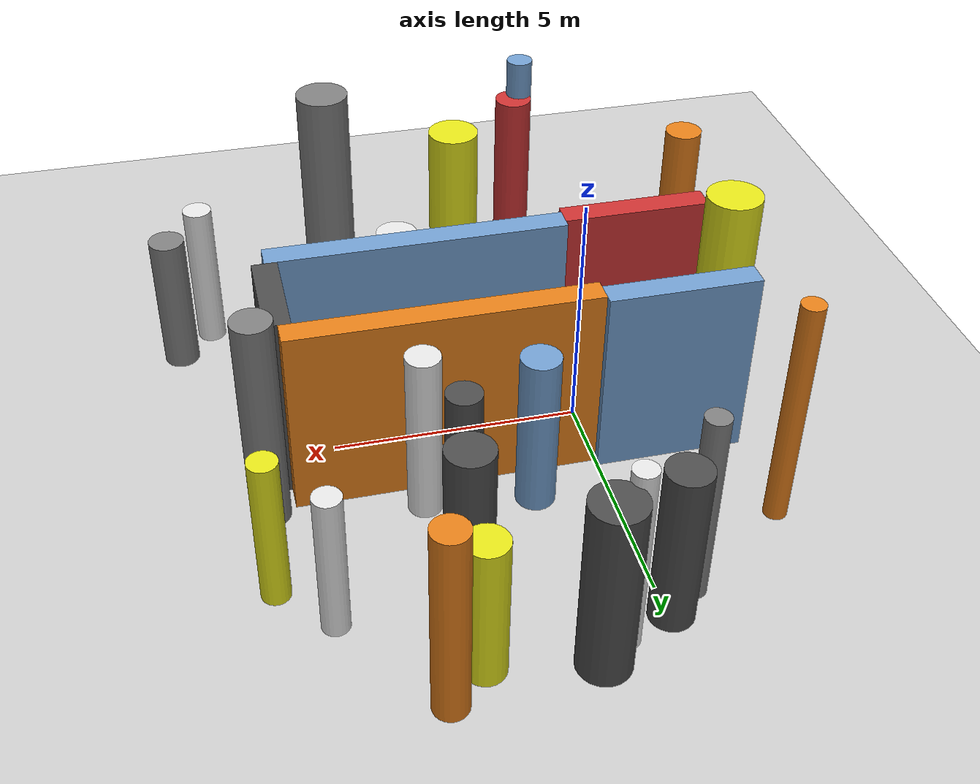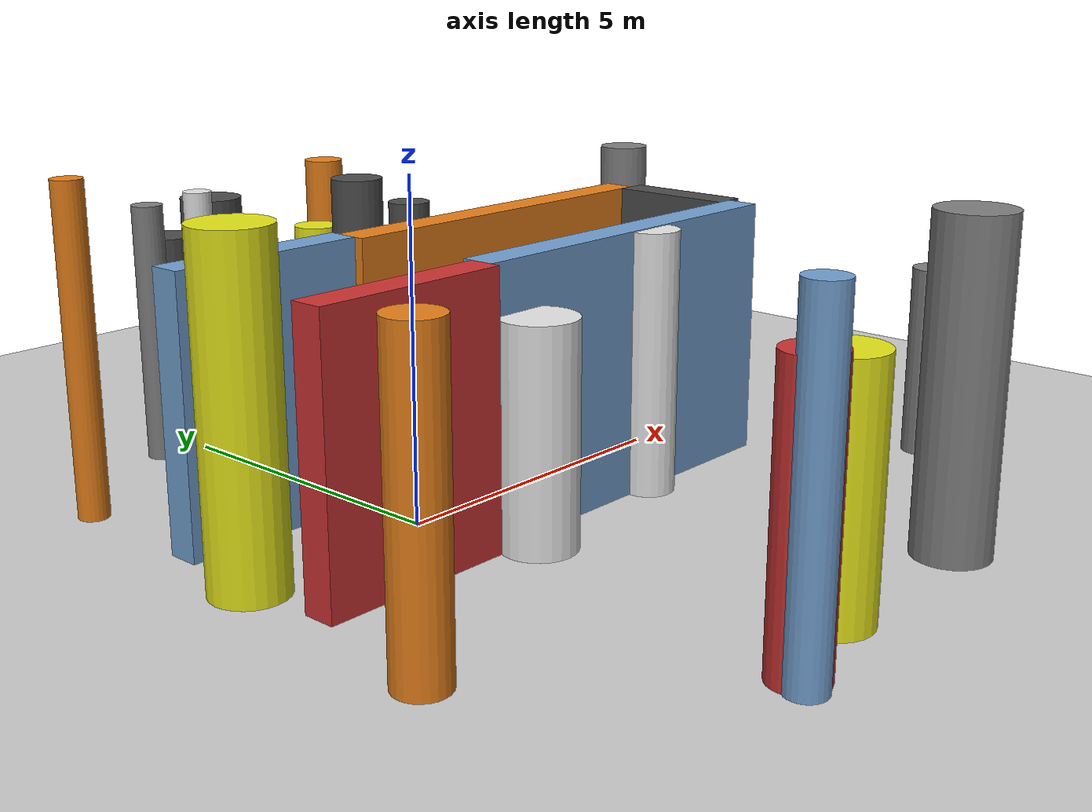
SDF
<?xml version='1.0'?>
<sdf version='1.6'>
  <world name='routeA_rl_v1__dense_recovery__rl_train__cul_de_sac_trap__000085'>
    <!-- Sun light -->
    <light name='sun' type='directional'>
      <cast_shadows>1</cast_shadows>
      <pose>0 0 10 0 0 0</pose>
      <diffuse>0.8 0.8 0.8 1</diffuse>
      <specular>0.2 0.2 0.2 1</specular>
      <attenuation>
        <range>1000</range>
        <constant>0.9</constant>
        <linear>0.01</linear>
        <quadratic>0.001</quadratic>
      </attenuation>
      <direction>-0.5 0.1 -0.9</direction>
    </light>

    <!-- Ground plane -->
    <model name='ground_plane'>
      <static>1</static>
      <link name='link'>
        <collision name='collision'>
          <geometry>
            <plane>
              <normal>0 0 1</normal>
              <size>100 100</size>
            </plane>
          </geometry>
          <surface>
            <contact>
              <collide_bitmask>65535</collide_bitmask>
              <ode/>
            </contact>
            <friction>
              <ode>
                <mu>100</mu>
                <mu2>50</mu2>
              </ode>
              <torsional><ode/></torsional>
            </friction>
            <bounce/>
          </surface>
          <max_contacts>10</max_contacts>
        </collision>
        <visual name='visual'>
          <cast_shadows>0</cast_shadows>
          <geometry>
            <plane>
              <normal>0 0 1</normal>
              <size>100 100</size>
            </plane>
          </geometry>
          <material>
            <script>
              <uri>file://media/materials/scripts/gazebo.material</uri>
              <n>Gazebo/Grey</n>
            </script>
          </material>
        </visual>
      </link>
    </model>

    <!-- Environment -->
    <magnetic_field>6e-06 2.3e-05 -4.2e-05</magnetic_field>
    <atmosphere type='adiabatic'/>
    <physics name='default_physics' default='0' type='ode'>
      <gravity>0 0 -9.8</gravity>
      <max_step_size>0.004</max_step_size>
      <real_time_factor>1</real_time_factor>
      <real_time_update_rate>250</real_time_update_rate>
    </physics>
    <scene>
      <ambient>0.4 0.4 0.4 1</ambient>
      <background>0.7 0.7 0.7 1</background>
      <shadows>1</shadows>
    </scene>
    <wind/>
    <spherical_coordinates>
      <surface_model>EARTH_WGS84</surface_model>
      <latitude_deg>0</latitude_deg>
      <longitude_deg>0</longitude_deg>
      <elevation>0</elevation>
      <heading_deg>0</heading_deg>
    </spherical_coordinates>

    <!-- ============ OBSTACLES (29) ============ -->
    <model name='trap_side_l'>
      <static>1</static>
      <link name='link'>
        <visual name='visual'>
          <geometry>
            <box>
              <size>6.0000 0.5000 4.0000</size>
            </box>
          </geometry>
          <material>
            <script>
              <n>Gazebo/Blue</n>
              <uri>file://media/materials/scripts/gazebo.material</uri>
            </script>
            <ambient>0.447 0.624 0.812 1</ambient>
          </material>
        </visual>
        <collision name='collision'>
          <geometry>
            <box>
              <size>6.0000 0.5000 4.0000</size>
            </box>
          </geometry>
          <max_contacts>10</max_contacts>
          <surface>
            <contact><ode/></contact>
            <bounce/>
            <friction>
              <ode><mu>1</mu><mu2>1</mu2></ode>
              <torsional><ode/></torsional>
            </friction>
          </surface>
        </collision>
      </link>
      <pose>3.0000 -1.2500 2.0000 0 0 0.0000</pose>
    </model>

    <model name='trap_side_r'>
      <static>1</static>
      <link name='link'>
        <visual name='visual'>
          <geometry>
            <box>
              <size>6.0000 0.5000 4.0000</size>
            </box>
          </geometry>
          <material>
            <script>
              <n>Gazebo/Orange</n>
              <uri>file://media/materials/scripts/gazebo.material</uri>
            </script>
            <ambient>0.9 0.5 0.1 1</ambient>
          </material>
        </visual>
        <collision name='collision'>
          <geometry>
            <box>
              <size>6.0000 0.5000 4.0000</size>
            </box>
          </geometry>
          <max_contacts>10</max_contacts>
          <surface>
            <contact><ode/></contact>
            <bounce/>
            <friction>
              <ode><mu>1</mu><mu2>1</mu2></ode>
              <torsional><ode/></torsional>
            </friction>
          </surface>
        </collision>
      </link>
      <pose>3.0000 1.2500 2.0000 0 0 0.0000</pose>
    </model>

    <model name='trap_back'>
      <static>1</static>
      <link name='link'>
        <visual name='visual'>
          <geometry>
            <box>
              <size>0.5000 2.0000 4.0000</size>
            </box>
          </geometry>
          <material>
            <script>
              <n>Gazebo/DarkGrey</n>
              <uri>file://media/materials/scripts/gazebo.material</uri>
            </script>
            <ambient>0.3 0.3 0.3 1</ambient>
          </material>
        </visual>
        <collision name='collision'>
          <geometry>
            <box>
              <size>0.5000 2.0000 4.0000</size>
            </box>
          </geometry>
          <max_contacts>10</max_contacts>
          <surface>
            <contact><ode/></contact>
            <bounce/>
            <friction>
              <ode><mu>1</mu><mu2>1</mu2></ode>
              <torsional><ode/></torsional>
            </friction>
          </surface>
        </collision>
      </link>
      <pose>6.0000 0.0000 2.0000 0 0 0.0000</pose>
    </model>

    <model name='trap_funnel_l'>
      <static>1</static>
      <link name='link'>
        <visual name='visual'>
          <geometry>
            <box>
              <size>3.0000 0.5000 4.0000</size>
            </box>
          </geometry>
          <material>
            <script>
              <n>Gazebo/Red</n>
              <uri>file://media/materials/scripts/gazebo.material</uri>
            </script>
            <ambient>0.8 0.2 0.2 1</ambient>
          </material>
        </visual>
        <collision name='collision'>
          <geometry>
            <box>
              <size>3.0000 0.5000 4.0000</size>
            </box>
          </geometry>
          <max_contacts>10</max_contacts>
          <surface>
            <contact><ode/></contact>
            <bounce/>
            <friction>
              <ode><mu>1</mu><mu2>1</mu2></ode>
              <torsional><ode/></torsional>
            </friction>
          </surface>
        </collision>
      </link>
      <pose>-1.5000 -1.4000 2.0000 0 0 0.0000</pose>
    </model>

    <model name='trap_funnel_r'>
      <static>1</static>
      <link name='link'>
        <visual name='visual'>
          <geometry>
            <box>
              <size>3.0000 0.5000 4.0000</size>
            </box>
          </geometry>
          <material>
            <script>
              <n>Gazebo/Blue</n>
              <uri>file://media/materials/scripts/gazebo.material</uri>
            </script>
            <ambient>0.447 0.624 0.812 1</ambient>
          </material>
        </visual>
        <collision name='collision'>
          <geometry>
            <box>
              <size>3.0000 0.5000 4.0000</size>
            </box>
          </geometry>
          <max_contacts>10</max_contacts>
          <surface>
            <contact><ode/></contact>
            <bounce/>
            <friction>
              <ode><mu>1</mu><mu2>1</mu2></ode>
              <torsional><ode/></torsional>
            </friction>
          </surface>
        </collision>
      </link>
      <pose>-1.5000 1.4000 2.0000 0 0 0.0000</pose>
    </model>

    <model name='trap_scatter_0'>
      <static>1</static>
      <link name='link'>
        <visual name='visual'>
          <geometry>
            <cylinder>
              <radius>0.2808</radius>
              <length>3.1948</length>
            </cylinder>
          </geometry>
          <material>
            <script>
              <n>Gazebo/Yellow</n>
              <uri>file://media/materials/scripts/gazebo.material</uri>
            </script>
            <ambient>0.9 0.9 0.1 1</ambient>
          </material>
        </visual>
        <collision name='collision'>
          <geometry>
            <cylinder>
              <radius>0.2808</radius>
              <length>3.1948</length>
            </cylinder>
          </geometry>
          <max_contacts>10</max_contacts>
          <surface>
            <contact><ode/></contact>
            <bounce/>
            <friction>
              <ode><mu>1</mu><mu2>1</mu2></ode>
              <torsional><ode/></torsional>
            </friction>
          </surface>
        </collision>
      </link>
      <pose>6.6518 3.6230 1.5974 0 0 0.0000</pose>
    </model>

    <model name='trap_scatter_1'>
      <static>1</static>
      <link name='link'>
        <visual name='visual'>
          <geometry>
            <cylinder>
              <radius>0.2339</radius>
              <length>3.9971</length>
            </cylinder>
          </geometry>
          <material>
            <script>
              <n>Gazebo/White</n>
              <uri>file://media/materials/scripts/gazebo.material</uri>
            </script>
            <ambient>0.9 0.9 0.9 1</ambient>
          </material>
        </visual>
        <collision name='collision'>
          <geometry>
            <cylinder>
              <radius>0.2339</radius>
              <length>3.9971</length>
            </cylinder>
          </geometry>
          <max_contacts>10</max_contacts>
          <surface>
            <contact><ode/></contact>
            <bounce/>
            <friction>
              <ode><mu>1</mu><mu2>1</mu2></ode>
              <torsional><ode/></torsional>
            </friction>
          </surface>
        </collision>
      </link>
      <pose>0.8514 6.0425 1.9986 0 0 0.0000</pose>
    </model>

    <model name='trap_scatter_2'>
      <static>1</static>
      <link name='link'>
        <visual name='visual'>
          <geometry>
            <cylinder>
              <radius>0.4300</radius>
              <length>3.4481</length>
            </cylinder>
          </geometry>
          <material>
            <script>
              <n>Gazebo/DarkGrey</n>
              <uri>file://media/materials/scripts/gazebo.material</uri>
            </script>
            <ambient>0.3 0.3 0.3 1</ambient>
          </material>
        </visual>
        <collision name='collision'>
          <geometry>
            <cylinder>
              <radius>0.4300</radius>
              <length>3.4481</length>
            </cylinder>
          </geometry>
          <max_contacts>10</max_contacts>
          <surface>
            <contact><ode/></contact>
            <bounce/>
            <friction>
              <ode><mu>1</mu><mu2>1</mu2></ode>
              <torsional><ode/></torsional>
            </friction>
          </surface>
        </collision>
      </link>
      <pose>-0.0855 5.6615 1.7240 0 0 0.0000</pose>
    </model>

    <model name='trap_scatter_3'>
      <static>1</static>
      <link name='link'>
        <visual name='visual'>
          <geometry>
            <cylinder>
              <radius>0.5588</radius>
              <length>4.7987</length>
            </cylinder>
          </geometry>
          <material>
            <script>
              <n>Gazebo/Yellow</n>
              <uri>file://media/materials/scripts/gazebo.material</uri>
            </script>
            <ambient>0.9 0.9 0.1 1</ambient>
          </material>
        </visual>
        <collision name='collision'>
          <geometry>
            <cylinder>
              <radius>0.5588</radius>
              <length>4.7987</length>
            </cylinder>
          </geometry>
          <max_contacts>10</max_contacts>
          <surface>
            <contact><ode/></contact>
            <bounce/>
            <friction>
              <ode><mu>1</mu><mu2>1</mu2></ode>
              <torsional><ode/></torsional>
            </friction>
          </surface>
        </collision>
      </link>
      <pose>-3.0422 -0.1135 2.3994 0 0 0.0000</pose>
    </model>

    <model name='trap_scatter_4'>
      <static>1</static>
      <link name='link'>
        <visual name='visual'>
          <geometry>
            <cylinder>
              <radius>0.2849</radius>
              <length>4.7404</length>
            </cylinder>
          </geometry>
          <material>
            <script>
              <n>Gazebo/Blue</n>
              <uri>file://media/materials/scripts/gazebo.material</uri>
            </script>
            <ambient>0.447 0.624 0.812 1</ambient>
          </material>
        </visual>
        <collision name='collision'>
          <geometry>
            <cylinder>
              <radius>0.2849</radius>
              <length>4.7404</length>
            </cylinder>
          </geometry>
          <max_contacts>10</max_contacts>
          <surface>
            <contact><ode/></contact>
            <bounce/>
            <friction>
              <ode><mu>1</mu><mu2>1</mu2></ode>
              <torsional><ode/></torsional>
            </friction>
          </surface>
        </collision>
      </link>
      <pose>-0.5581 -6.8176 2.3702 0 0 0.0000</pose>
    </model>

    <model name='trap_scatter_5'>
      <static>1</static>
      <link name='link'>
        <visual name='visual'>
          <geometry>
            <cylinder>
              <radius>0.2684</radius>
              <length>3.0898</length>
            </cylinder>
          </geometry>
          <material>
            <script>
              <n>Gazebo/White</n>
              <uri>file://media/materials/scripts/gazebo.material</uri>
            </script>
            <ambient>0.9 0.9 0.9 1</ambient>
          </material>
        </visual>
        <collision name='collision'>
          <geometry>
            <cylinder>
              <radius>0.2684</radius>
              <length>3.0898</length>
            </cylinder>
          </geometry>
          <max_contacts>10</max_contacts>
          <surface>
            <contact><ode/></contact>
            <bounce/>
            <friction>
              <ode><mu>1</mu><mu2>1</mu2></ode>
              <torsional><ode/></torsional>
            </friction>
          </surface>
        </collision>
      </link>
      <pose>5.7222 4.5843 1.5449 0 0 0.0000</pose>
    </model>

    <model name='trap_scatter_6'>
      <static>1</static>
      <link name='link'>
        <visual name='visual'>
          <geometry>
            <cylinder>
              <radius>0.3400</radius>
              <length>3.6444</length>
            </cylinder>
          </geometry>
          <material>
            <script>
              <n>Gazebo/White</n>
              <uri>file://media/materials/scripts/gazebo.material</uri>
            </script>
            <ambient>0.9 0.9 0.9 1</ambient>
          </material>
        </visual>
        <collision name='collision'>
          <geometry>
            <cylinder>
              <radius>0.3400</radius>
              <length>3.6444</length>
            </cylinder>
          </geometry>
          <max_contacts>10</max_contacts>
          <surface>
            <contact><ode/></contact>
            <bounce/>
            <friction>
              <ode><mu>1</mu><mu2>1</mu2></ode>
              <torsional><ode/></torsional>
            </friction>
          </surface>
        </collision>
      </link>
      <pose>3.5707 2.0055 1.8222 0 0 0.0000</pose>
    </model>

    <model name='trap_scatter_7'>
      <static>1</static>
      <link name='link'>
        <visual name='visual'>
          <geometry>
            <cylinder>
              <radius>0.3921</radius>
              <length>3.0679</length>
            </cylinder>
          </geometry>
          <material>
            <script>
              <n>Gazebo/Yellow</n>
              <uri>file://media/materials/scripts/gazebo.material</uri>
            </script>
            <ambient>0.9 0.9 0.1 1</ambient>
          </material>
        </visual>
        <collision name='collision'>
          <geometry>
            <cylinder>
              <radius>0.3921</radius>
              <length>3.0679</length>
            </cylinder>
          </geometry>
          <max_contacts>10</max_contacts>
          <surface>
            <contact><ode/></contact>
            <bounce/>
            <friction>
              <ode><mu>1</mu><mu2>1</mu2></ode>
              <torsional><ode/></torsional>
            </friction>
          </surface>
        </collision>
      </link>
      <pose>3.4086 6.1086 1.5339 0 0 0.0000</pose>
    </model>

    <model name='trap_scatter_8'>
      <static>1</static>
      <link name='link'>
        <visual name='visual'>
          <geometry>
            <cylinder>
              <radius>0.4443</radius>
              <length>4.0283</length>
            </cylinder>
          </geometry>
          <material>
            <script>
              <n>Gazebo/DarkGrey</n>
              <uri>file://media/materials/scripts/gazebo.material</uri>
            </script>
            <ambient>0.3 0.3 0.3 1</ambient>
          </material>
        </visual>
        <collision name='collision'>
          <geometry>
            <cylinder>
              <radius>0.4443</radius>
              <length>4.0283</length>
            </cylinder>
          </geometry>
          <max_contacts>10</max_contacts>
          <surface>
            <contact><ode/></contact>
            <bounce/>
            <friction>
              <ode><mu>1</mu><mu2>1</mu2></ode>
              <torsional><ode/></torsional>
            </friction>
          </surface>
        </collision>
      </link>
      <pose>3.4329 5.0134 2.0142 0 0 0.0000</pose>
    </model>

    <model name='trap_scatter_9'>
      <static>1</static>
      <link name='link'>
        <visual name='visual'>
          <geometry>
            <cylinder>
              <radius>0.3652</radius>
              <length>3.0193</length>
            </cylinder>
          </geometry>
          <material>
            <script>
              <n>Gazebo/Grey</n>
              <uri>file://media/materials/scripts/gazebo.material</uri>
            </script>
            <ambient>0.5 0.5 0.5 1</ambient>
          </material>
        </visual>
        <collision name='collision'>
          <geometry>
            <cylinder>
              <radius>0.3652</radius>
              <length>3.0193</length>
            </cylinder>
          </geometry>
          <max_contacts>10</max_contacts>
          <surface>
            <contact><ode/></contact>
            <bounce/>
            <friction>
              <ode><mu>1</mu><mu2>1</mu2></ode>
              <torsional><ode/></torsional>
            </friction>
          </surface>
        </collision>
      </link>
      <pose>7.7802 -3.7558 1.5096 0 0 0.0000</pose>
    </model>

    <model name='trap_scatter_10'>
      <static>1</static>
      <link name='link'>
        <visual name='visual'>
          <geometry>
            <cylinder>
              <radius>0.3381</radius>
              <length>3.8409</length>
            </cylinder>
          </geometry>
          <material>
            <script>
              <n>Gazebo/DarkGrey</n>
              <uri>file://media/materials/scripts/gazebo.material</uri>
            </script>
            <ambient>0.3 0.3 0.3 1</ambient>
          </material>
        </visual>
        <collision name='collision'>
          <geometry>
            <cylinder>
              <radius>0.3381</radius>
              <length>3.8409</length>
            </cylinder>
          </geometry>
          <max_contacts>10</max_contacts>
          <surface>
            <contact><ode/></contact>
            <bounce/>
            <friction>
              <ode><mu>1</mu><mu2>1</mu2></ode>
              <torsional><ode/></torsional>
            </friction>
          </surface>
        </collision>
      </link>
      <pose>3.1499 3.4025 1.9204 0 0 0.0000</pose>
    </model>

    <model name='trap_scatter_12'>
      <static>1</static>
      <link name='link'>
        <visual name='visual'>
          <geometry>
            <cylinder>
              <radius>0.4046</radius>
              <length>3.8931</length>
            </cylinder>
          </geometry>
          <material>
            <script>
              <n>Gazebo/Red</n>
              <uri>file://media/materials/scripts/gazebo.material</uri>
            </script>
            <ambient>0.8 0.2 0.2 1</ambient>
          </material>
        </visual>
        <collision name='collision'>
          <geometry>
            <cylinder>
              <radius>0.4046</radius>
              <length>3.8931</length>
            </cylinder>
          </geometry>
          <max_contacts>10</max_contacts>
          <surface>
            <contact><ode/></contact>
            <bounce/>
            <friction>
              <ode><mu>1</mu><mu2>1</mu2></ode>
              <torsional><ode/></torsional>
            </friction>
          </surface>
        </collision>
      </link>
      <pose>-0.3733 -6.5993 1.9466 0 0 0.0000</pose>
    </model>

    <model name='trap_scatter_13'>
      <static>1</static>
      <link name='link'>
        <visual name='visual'>
          <geometry>
            <cylinder>
              <radius>0.5589</radius>
              <length>3.5009</length>
            </cylinder>
          </geometry>
          <material>
            <script>
              <n>Gazebo/Yellow</n>
              <uri>file://media/materials/scripts/gazebo.material</uri>
            </script>
            <ambient>0.9 0.9 0.1 1</ambient>
          </material>
        </visual>
        <collision name='collision'>
          <geometry>
            <cylinder>
              <radius>0.5589</radius>
              <length>3.5009</length>
            </cylinder>
          </geometry>
          <max_contacts>10</max_contacts>
          <surface>
            <contact><ode/></contact>
            <bounce/>
            <friction>
              <ode><mu>1</mu><mu2>1</mu2></ode>
              <torsional><ode/></torsional>
            </friction>
          </surface>
        </collision>
      </link>
      <pose>1.1598 -6.0849 1.7504 0 0 0.0000</pose>
    </model>

    <model name='trap_scatter_14'>
      <static>1</static>
      <link name='link'>
        <visual name='visual'>
          <geometry>
            <cylinder>
              <radius>0.5140</radius>
              <length>3.7852</length>
            </cylinder>
          </geometry>
          <material>
            <script>
              <n>Gazebo/DarkGrey</n>
              <uri>file://media/materials/scripts/gazebo.material</uri>
            </script>
            <ambient>0.3 0.3 0.3 1</ambient>
          </material>
        </visual>
        <collision name='collision'>
          <geometry>
            <cylinder>
              <radius>0.5140</radius>
              <length>3.7852</length>
            </cylinder>
          </geometry>
          <max_contacts>10</max_contacts>
          <surface>
            <contact><ode/></contact>
            <bounce/>
            <friction>
              <ode><mu>1</mu><mu2>1</mu2></ode>
              <torsional><ode/></torsional>
            </friction>
          </surface>
        </collision>
      </link>
      <pose>1.4110 6.4499 1.8926 0 0 0.0000</pose>
    </model>

    <model name='trap_scatter_15'>
      <static>1</static>
      <link name='link'>
        <visual name='visual'>
          <geometry>
            <cylinder>
              <radius>0.2401</radius>
              <length>4.0721</length>
            </cylinder>
          </geometry>
          <material>
            <script>
              <n>Gazebo/Grey</n>
              <uri>file://media/materials/scripts/gazebo.material</uri>
            </script>
            <ambient>0.5 0.5 0.5 1</ambient>
          </material>
        </visual>
        <collision name='collision'>
          <geometry>
            <cylinder>
              <radius>0.2401</radius>
              <length>4.0721</length>
            </cylinder>
          </geometry>
          <max_contacts>10</max_contacts>
          <surface>
            <contact><ode/></contact>
            <bounce/>
            <friction>
              <ode><mu>1</mu><mu2>1</mu2></ode>
              <torsional><ode/></torsional>
            </friction>
          </surface>
        </collision>
      </link>
      <pose>-0.6796 5.1993 2.0360 0 0 0.0000</pose>
    </model>

    <model name='trap_scatter_16'>
      <static>1</static>
      <link name='link'>
        <visual name='visual'>
          <geometry>
            <cylinder>
              <radius>0.5645</radius>
              <length>4.7425</length>
            </cylinder>
          </geometry>
          <material>
            <script>
              <n>Gazebo/Grey</n>
              <uri>file://media/materials/scripts/gazebo.material</uri>
            </script>
            <ambient>0.5 0.5 0.5 1</ambient>
          </material>
        </visual>
        <collision name='collision'>
          <geometry>
            <cylinder>
              <radius>0.5645</radius>
              <length>4.7425</length>
            </cylinder>
          </geometry>
          <max_contacts>10</max_contacts>
          <surface>
            <contact><ode/></contact>
            <bounce/>
            <friction>
              <ode><mu>1</mu><mu2>1</mu2></ode>
              <torsional><ode/></torsional>
            </friction>
          </surface>
        </collision>
      </link>
      <pose>4.0788 -6.1559 2.3712 0 0 0.0000</pose>
    </model>

    <model name='trap_scatter_17'>
      <static>1</static>
      <link name='link'>
        <visual name='visual'>
          <geometry>
            <cylinder>
              <radius>0.3901</radius>
              <length>4.5874</length>
            </cylinder>
          </geometry>
          <material>
            <script>
              <n>Gazebo/Grey</n>
              <uri>file://media/materials/scripts/gazebo.material</uri>
            </script>
            <ambient>0.5 0.5 0.5 1</ambient>
          </material>
        </visual>
        <collision name='collision'>
          <geometry>
            <cylinder>
              <radius>0.3901</radius>
              <length>4.5874</length>
            </cylinder>
          </geometry>
          <max_contacts>10</max_contacts>
          <surface>
            <contact><ode/></contact>
            <bounce/>
            <friction>
              <ode><mu>1</mu><mu2>1</mu2></ode>
              <torsional><ode/></torsional>
            </friction>
          </surface>
        </collision>
      </link>
      <pose>6.4894 1.5669 2.2937 0 0 0.0000</pose>
    </model>

    <model name='trap_scatter_18'>
      <static>1</static>
      <link name='link'>
        <visual name='visual'>
          <geometry>
            <cylinder>
              <radius>0.4049</radius>
              <length>3.9858</length>
            </cylinder>
          </geometry>
          <material>
            <script>
              <n>Gazebo/White</n>
              <uri>file://media/materials/scripts/gazebo.material</uri>
            </script>
            <ambient>0.9 0.9 0.9 1</ambient>
          </material>
        </visual>
        <collision name='collision'>
          <geometry>
            <cylinder>
              <radius>0.4049</radius>
              <length>3.9858</length>
            </cylinder>
          </geometry>
          <max_contacts>10</max_contacts>
          <surface>
            <contact><ode/></contact>
            <bounce/>
            <friction>
              <ode><mu>1</mu><mu2>1</mu2></ode>
              <torsional><ode/></torsional>
            </friction>
          </surface>
        </collision>
      </link>
      <pose>3.3440 -1.5282 1.9929 0 0 0.0000</pose>
    </model>

    <model name='trap_scatter_19'>
      <static>1</static>
      <link name='link'>
        <visual name='visual'>
          <geometry>
            <cylinder>
              <radius>0.3916</radius>
              <length>3.4270</length>
            </cylinder>
          </geometry>
          <material>
            <script>
              <n>Gazebo/Blue</n>
              <uri>file://media/materials/scripts/gazebo.material</uri>
            </script>
            <ambient>0.447 0.624 0.812 1</ambient>
          </material>
        </visual>
        <collision name='collision'>
          <geometry>
            <cylinder>
              <radius>0.3916</radius>
              <length>3.4270</length>
            </cylinder>
          </geometry>
          <max_contacts>10</max_contacts>
          <surface>
            <contact><ode/></contact>
            <bounce/>
            <friction>
              <ode><mu>1</mu><mu2>1</mu2></ode>
              <torsional><ode/></torsional>
            </friction>
          </surface>
        </collision>
      </link>
      <pose>1.4483 2.2374 1.7135 0 0 0.0000</pose>
    </model>

    <model name='trap_scatter_20'>
      <static>1</static>
      <link name='link'>
        <visual name='visual'>
          <geometry>
            <cylinder>
              <radius>0.2978</radius>
              <length>3.2308</length>
            </cylinder>
          </geometry>
          <material>
            <script>
              <n>Gazebo/White</n>
              <uri>file://media/materials/scripts/gazebo.material</uri>
            </script>
            <ambient>0.9 0.9 0.9 1</ambient>
          </material>
        </visual>
        <collision name='collision'>
          <geometry>
            <cylinder>
              <radius>0.2978</radius>
              <length>3.2308</length>
            </cylinder>
          </geometry>
          <max_contacts>10</max_contacts>
          <surface>
            <contact><ode/></contact>
            <bounce/>
            <friction>
              <ode><mu>1</mu><mu2>1</mu2></ode>
              <torsional><ode/></torsional>
            </friction>
          </surface>
        </collision>
      </link>
      <pose>7.0720 -4.4786 1.6154 0 0 0.0000</pose>
    </model>

    <model name='trap_scatter_21'>
      <static>1</static>
      <link name='link'>
        <visual name='visual'>
          <geometry>
            <cylinder>
              <radius>0.5702</radius>
              <length>3.2652</length>
            </cylinder>
          </geometry>
          <material>
            <script>
              <n>Gazebo/White</n>
              <uri>file://media/materials/scripts/gazebo.material</uri>
            </script>
            <ambient>0.9 0.9 0.9 1</ambient>
          </material>
        </visual>
        <collision name='collision'>
          <geometry>
            <cylinder>
              <radius>0.5702</radius>
              <length>3.2652</length>
            </cylinder>
          </geometry>
          <max_contacts>10</max_contacts>
          <surface>
            <contact><ode/></contact>
            <bounce/>
            <friction>
              <ode><mu>1</mu><mu2>1</mu2></ode>
              <torsional><ode/></torsional>
            </friction>
          </surface>
        </collision>
      </link>
      <pose>0.5319 -1.8445 1.6326 0 0 0.0000</pose>
    </model>

    <model name='trap_scatter_22'>
      <static>1</static>
      <link name='link'>
        <visual name='visual'>
          <geometry>
            <cylinder>
              <radius>0.3816</radius>
              <length>4.3229</length>
            </cylinder>
          </geometry>
          <material>
            <script>
              <n>Gazebo/Orange</n>
              <uri>file://media/materials/scripts/gazebo.material</uri>
            </script>
            <ambient>0.9 0.5 0.1 1</ambient>
          </material>
        </visual>
        <collision name='collision'>
          <geometry>
            <cylinder>
              <radius>0.3816</radius>
              <length>4.3229</length>
            </cylinder>
          </geometry>
          <max_contacts>10</max_contacts>
          <surface>
            <contact><ode/></contact>
            <bounce/>
            <friction>
              <ode><mu>1</mu><mu2>1</mu2></ode>
              <torsional><ode/></torsional>
            </friction>
          </surface>
        </collision>
      </link>
      <pose>-3.3292 -3.5744 2.1615 0 0 0.0000</pose>
    </model>

    <model name='trap_scatter_23'>
      <static>1</static>
      <link name='link'>
        <visual name='visual'>
          <geometry>
            <cylinder>
              <radius>0.2298</radius>
              <length>4.9043</length>
            </cylinder>
          </geometry>
          <material>
            <script>
              <n>Gazebo/Orange</n>
              <uri>file://media/materials/scripts/gazebo.material</uri>
            </script>
            <ambient>0.9 0.5 0.1 1</ambient>
          </material>
        </visual>
        <collision name='collision'>
          <geometry>
            <cylinder>
              <radius>0.2298</radius>
              <length>4.9043</length>
            </cylinder>
          </geometry>
          <max_contacts>10</max_contacts>
          <surface>
            <contact><ode/></contact>
            <bounce/>
            <friction>
              <ode><mu>1</mu><mu2>1</mu2></ode>
              <torsional><ode/></torsional>
            </friction>
          </surface>
        </collision>
      </link>
      <pose>-2.9113 3.6794 2.4521 0 0 0.0000</pose>
    </model>

    <model name='trap_scatter_24'>
      <static>1</static>
      <link name='link'>
        <visual name='visual'>
          <geometry>
            <cylinder>
              <radius>0.3367</radius>
              <length>4.1003</length>
            </cylinder>
          </geometry>
          <material>
            <script>
              <n>Gazebo/Orange</n>
              <uri>file://media/materials/scripts/gazebo.material</uri>
            </script>
            <ambient>0.9 0.5 0.1 1</ambient>
          </material>
        </visual>
        <collision name='collision'>
          <geometry>
            <cylinder>
              <radius>0.3367</radius>
              <length>4.1003</length>
            </cylinder>
          </geometry>
          <max_contacts>10</max_contacts>
          <surface>
            <contact><ode/></contact>
            <bounce/>
            <friction>
              <ode><mu>1</mu><mu2>1</mu2></ode>
              <torsional><ode/></torsional>
            </friction>
          </surface>
        </collision>
      </link>
      <pose>4.1509 6.7348 2.0501 0 0 0.0000</pose>
    </model>

    <!-- GUI camera -->
    <gui fullscreen='0'>
      <camera name='user_camera'>
        <pose>-15 0 18 0 0.85 0.15</pose>
        <view_controller>orbit</view_controller>
        <projection_type>perspective</projection_type>
      </camera>
    </gui>
  </world>
</sdf>
